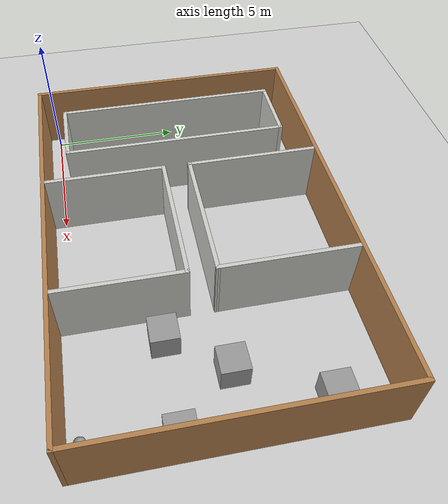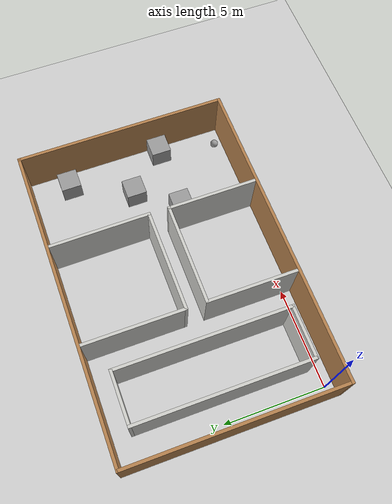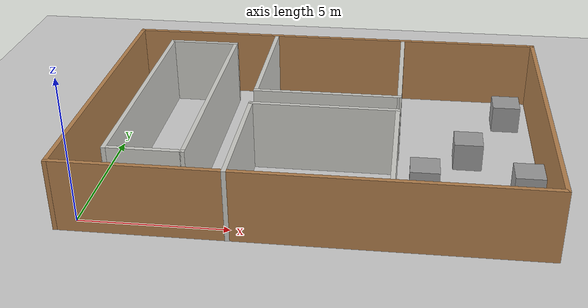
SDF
<sdf version="1.6">
 <world name="default">
  <light name="sun" type="directional">
   <pose>0 0 10 0 -0 0</pose>
   <diffuse>0.8 0.8 0.8 1</diffuse>
   <specular>0.2 0.2 0.2 1</specular>
   <attenuation>
    <range>1000</range>
    <constant>0.9</constant>
    <linear>0.01</linear>
    <quadratic>0.001</quadratic>
   </attenuation>
   <direction>-0.5 0.1 -0.9</direction>
  </light>
  <model name="ground_plane">
   <static>1</static>
   <link name="link">
    <collision name="collision">
     <geometry><plane><normal>0 0 1</normal><size>100 100</size></plane></geometry>
     <surface>
      <contact><collide_bitmask>65535</collide_bitmask></contact>
      <friction><ode><mu>100</mu><mu2>50</mu2></ode></friction>
     </surface>
    </collision>
    <visual name="visual">
     <cast_shadows>0</cast_shadows>
     <geometry><plane><normal>0 0 1</normal><size>100 100</size></plane></geometry>
     <material>
      <script><uri>file://media/materials/scripts/gazebo.material</uri><name>Gazebo/Grey</name></script>
     </material>
    </visual>
   </link>
  </model>
  <gravity>0 0 -9.8</gravity>
  <magnetic_field>6e-06 2.3e-05 -4.2e-05</magnetic_field>
  <atmosphere type="adiabatic"/>
  <physics name="default_physics" default="0" type="ode">
   <max_step_size>0.001</max_step_size>
   <real_time_factor>1</real_time_factor>
   <real_time_update_rate>1000</real_time_update_rate>
  </physics>
  <scene><ambient>0.4 0.4 0.4 1</ambient><background>0.7 0.7 0.7 1</background><shadows>1</shadows></scene>
  <audio><device>default</device></audio>
  <spherical_coordinates>
   <surface_model>EARTH_WGS84</surface_model>
   <latitude_deg>0</latitude_deg>
   <longitude_deg>0</longitude_deg>
   <elevation>0</elevation>
   <heading_deg>0</heading_deg>
  </spherical_coordinates>
  <model name="house_1007">
   <pose>7.25 4.75 0 0 -0 0</pose>
   <link name="Wall_10">
    <collision name="Wall_10_Collision">
     <geometry><box><size>8.65 0.15 2.5</size></box></geometry>
     <pose>0 0 1.25 0 -0 0</pose>
    </collision>
    <visual name="Wall_10_Visual">
     <pose>0 0 1.25 0 -0 0</pose>
     <geometry><box><size>8.65 0.15 2.5</size></box></geometry>
     <material>
      <script><uri>file://media/materials/scripts/gazebo.material</uri><name>Gazebo/CeilingTiled</name></script>
      <ambient>1 1 1 1</ambient>
     </material>
     <meta><layer>0</layer></meta>
    </visual>
    <pose>-6.25 -0 0 0 -0 -1.5708</pose>
   </link>
   <link name="Wall_11">
    <collision name="Wall_11_Collision">
     <geometry><box><size>2.65 0.15 2.5</size></box></geometry>
     <pose>0 0 1.25 0 -0 0</pose>
    </collision>
    <visual name="Wall_11_Visual">
     <pose>0 0 1.25 0 -0 0</pose>
     <geometry><box><size>2.65 0.15 2.5</size></box></geometry>
     <material>
      <script><uri>file://media/materials/scripts/gazebo.material</uri><name>Gazebo/CeilingTiled</name></script>
      <ambient>1 1 1 1</ambient>
     </material>
     <meta><layer>0</layer></meta>
    </visual>
    <pose>-5 -4.25 0 0 -0 0</pose>
   </link>
   <link name="Wall_12">
    <collision name="Wall_12_Collision">
     <geometry><box><size>8.65 0.15 2.5</size></box></geometry>
     <pose>0 0 1.25 0 -0 0</pose>
    </collision>
    <visual name="Wall_12_Visual">
     <pose>0 0 1.25 0 -0 0</pose>
     <geometry><box><size>8.65 0.15 2.5</size></box></geometry>
     <material>
      <script><uri>file://media/materials/scripts/gazebo.material</uri><name>Gazebo/CeilingTiled</name></script>
      <ambient>1 1 1 1</ambient>
     </material>
     <meta><layer>0</layer></meta>
    </visual>
    <pose>-3.75 -0 0 0 -0 1.5708</pose>
   </link>
   <link name="Wall_17">
    <collision name="Wall_17_Collision">
     <geometry><box><size>4.65 0.15 2.5</size></box></geometry>
     <pose>0 0 1.25 0 -0 0</pose>
    </collision>
    <visual name="Wall_17_Visual">
     <pose>0 0 1.25 0 -0 0</pose>
     <geometry><box><size>4.65 0.15 2.5</size></box></geometry>
     <material>
      <script><uri>file://media/materials/scripts/gazebo.material</uri><name>Gazebo/CeilingTiled</name></script>
      <ambient>1 1 1 1</ambient>
     </material>
     <meta><layer>0</layer></meta>
    </visual>
    <pose>-2.25 -3 0 0 -0 1.5708</pose>
   </link>
   <link name="Wall_18">
    <collision name="Wall_18_Collision">
     <geometry><box><size>5.15 0.15 2.5</size></box></geometry>
     <pose>0 0 1.25 0 -0 0</pose>
    </collision>
    <visual name="Wall_18_Visual">
     <pose>0 0 1.25 0 -0 0</pose>
     <geometry><box><size>5.15 0.15 2.5</size></box></geometry>
     <material>
      <script><uri>file://media/materials/scripts/gazebo.material</uri><name>Gazebo/CeilingTiled</name></script>
      <ambient>1 1 1 1</ambient>
     </material>
     <meta><layer>0</layer></meta>
    </visual>
    <pose>0.25 -0.75 0 0 -0 0</pose>
   </link>
   <link name="Wall_20">
    <collision name="Wall_20_Collision">
     <geometry><box><size>5.172 0.15 2.5</size></box></geometry>
     <pose>0 0 1.25 0 -0 0</pose>
    </collision>
    <visual name="Wall_20_Visual">
     <pose>0 0 1.25 0 -0 0</pose>
     <geometry><box><size>5.172 0.15 2.5</size></box></geometry>
     <material>
      <script><uri>file://media/materials/scripts/gazebo.material</uri><name>Gazebo/CeilingTiled</name></script>
      <ambient>1 1 1 1</ambient>
     </material>
     <meta><layer>0</layer></meta>
    </visual>
    <pose>0.261 0.25 0 0 -0 0</pose>
   </link>
   <link name="Wall_22">
    <collision name="Wall_22_Collision">
     <geometry><box><size>4.5 0.15 2.5</size></box></geometry>
     <pose>0 0 1.25 0 -0 0</pose>
    </collision>
    <visual name="Wall_22_Visual">
     <pose>0 0 1.25 0 -0 0</pose>
     <geometry><box><size>4.5 0.15 2.5</size></box></geometry>
     <material>
      <script><uri>file://media/materials/scripts/gazebo.material</uri><name>Gazebo/CeilingTiled</name></script>
      <ambient>1 1 1 1</ambient>
     </material>
     <meta><layer>0</layer></meta>
    </visual>
    <pose>2.75 -2.925 0 0 -0 -1.5708</pose>
   </link>
   <link name="Wall_26">
    <collision name="Wall_26_Collision">
     <geometry><box><size>5.00005 0.15 2.5</size></box></geometry>
     <pose>0 0 1.25 0 -0 0</pose>
    </collision>
    <visual name="Wall_26_Visual">
     <pose>0 0 1.25 0 -0 0</pose>
     <geometry><box><size>5.00005 0.15 2.5</size></box></geometry>
     <material>
      <script><uri>file://media/materials/scripts/gazebo.material</uri><name>Gazebo/CeilingTiled</name></script>
      <ambient>1 1 1 1</ambient>
     </material>
     <meta><layer>0</layer></meta>
    </visual>
    <pose>2.761 2.675 0 0 -0 1.57533</pose>
   </link>
   <link name="Wall_3">
    <collision name="Wall_3_Collision">
     <geometry><box><size>10.65 0.15 2.5</size></box></geometry>
     <pose>0 0 1.25 0 -0 0</pose>
    </collision>
    <visual name="Wall_3_Visual">
     <pose>0 0 1.25 0 -0 0</pose>
     <geometry><box><size>10.65 0.15 2.5</size></box></geometry>
     <material>
      <script><uri>file://media/materials/scripts/gazebo.material</uri><name>Gazebo/Wood</name></script>
      <ambient>1 1 1 1</ambient>
     </material>
     <meta><layer>0</layer></meta>
    </visual>
    <pose>-7.75 -0 0 0 -0 1.5708</pose>
   </link>
   <link name="Wall_32">
    <collision name="Wall_32_Collision">
     <geometry><box><size>2.65 0.15 2.5</size></box></geometry>
     <pose>0 0 1.25 0 -0 0</pose>
    </collision>
    <visual name="Wall_32_Visual">
     <pose>0 0 1.25 0 -0 0</pose>
     <geometry><box><size>2.65 0.15 2.5</size></box></geometry>
     <material>
      <script><uri>file://media/materials/scripts/gazebo.material</uri><name>Gazebo/CeilingTiled</name></script>
      <ambient>1 1 1 1</ambient>
     </material>
     <meta><layer>0</layer></meta>
    </visual>
    <pose>-5 4.25 0 0 -0 0</pose>
   </link>
   <link name="Wall_34">
    <collision name="Wall_34_Collision">
     <geometry><box><size>5.15 0.15 2.5</size></box></geometry>
     <pose>0 0 1.25 0 -0 0</pose>
    </collision>
    <visual name="Wall_34_Visual">
     <pose>0 0 1.25 0 -0 0</pose>
     <geometry><box><size>5.15 0.15 2.5</size></box></geometry>
     <material>
      <script><uri>file://media/materials/scripts/gazebo.material</uri><name>Gazebo/CeilingTiled</name></script>
      <ambient>1 1 1 1</ambient>
     </material>
     <meta><layer>0</layer></meta>
    </visual>
    <pose>-2.25 2.75 0 0 -0 1.5708</pose>
   </link>
   <link name="Wall_6">
    <collision name="Wall_6_Collision">
     <geometry><box><size>15.65 0.15 2.5</size></box></geometry>
     <pose>0 0 1.25 0 -0 0</pose>
    </collision>
    <visual name="Wall_6_Visual">
     <pose>0 0 1.25 0 -0 0</pose>
     <geometry><box><size>15.65 0.15 2.5</size></box></geometry>
     <material>
      <script><uri>file://media/materials/scripts/gazebo.material</uri><name>Gazebo/Wood</name></script>
      <ambient>1 1 1 1</ambient>
     </material>
     <meta><layer>0</layer></meta>
    </visual>
    <pose>-0 5.25 0 0 -0 0</pose>
   </link>
   <link name="Wall_7">
    <collision name="Wall_7_Collision">
     <geometry><box><size>10.65 0.15 2.5</size></box></geometry>
     <pose>0 0 1.25 0 -0 0</pose>
    </collision>
    <visual name="Wall_7_Visual">
     <pose>0 0 1.25 0 -0 0</pose>
     <geometry><box><size>10.65 0.15 2.5</size></box></geometry>
     <material>
      <script><uri>file://media/materials/scripts/gazebo.material</uri><name>Gazebo/Wood</name></script>
      <ambient>1 1 1 1</ambient>
     </material>
     <meta><layer>0</layer></meta>
    </visual>
    <pose>7.75 -0 0 0 -0 -1.5708</pose>
   </link>
   <link name="Wall_8">
    <collision name="Wall_8_Collision">
     <geometry><box><size>15.65 0.15 2.5</size></box></geometry>
     <pose>0 0 1.25 0 -0 0</pose>
    </collision>
    <visual name="Wall_8_Visual">
     <pose>0 0 1.25 0 -0 0</pose>
     <geometry><box><size>15.65 0.15 2.5</size></box></geometry>
     <material>
      <script><uri>file://media/materials/scripts/gazebo.material</uri><name>Gazebo/Wood</name></script>
      <ambient>1 1 1 1</ambient>
     </material>
     <meta><layer>0</layer></meta>
    </visual>
    <pose>-0 -5.25 0 0 -0 3.14159</pose>
   </link>
   <static>1</static>
  </model>
  <model name="unit_box">
   <pose>11 3 0.499995 1e-05 -0 0</pose>
   <link name="link">
    <inertial>
     <mass>1</mass>
     <inertia>
      <ixx>0.166667</ixx>
      <ixy>0</ixy>
      <ixz>0</ixz>
      <iyy>0.166667</iyy>
      <iyz>0</iyz>
      <izz>0.166667</izz>
     </inertia>
    </inertial>
    <collision name="collision"><geometry><box><size>1 1 1</size></box></geometry></collision>
    <visual name="visual">
     <geometry><box><size>1 1 1</size></box></geometry>
     <material>
      <script><name>Gazebo/Grey</name><uri>file://media/materials/scripts/gazebo.material</uri></script>
     </material>
    </visual>
   </link>
  </model>
  <model name="unit_box_0">
   <pose>14 8 0.499995 -1e-05 0 0</pose>
   <link name="link">
    <inertial>
     <mass>1</mass>
     <inertia>
      <ixx>0.166667</ixx>
      <ixy>0</ixy>
      <ixz>0</ixz>
      <iyy>0.166667</iyy>
      <iyz>0</iyz>
      <izz>0.166667</izz>
     </inertia>
    </inertial>
    <collision name="collision"><geometry><box><size>1 1 1</size></box></geometry></collision>
    <visual name="visual">
     <geometry><box><size>1 1 1</size></box></geometry>
     <material>
      <script><name>Gazebo/Grey</name><uri>file://media/materials/scripts/gazebo.material</uri></script>
     </material>
    </visual>
   </link>
  </model>
  <model name="unit_box_1">
   <pose>12.5 5 0.499995 0 -1e-05 0</pose>
   <link name="link">
    <inertial>
     <mass>1</mass>
     <inertia>
      <ixx>0.166667</ixx>
      <ixy>0</ixy>
      <ixz>0</ixz>
      <iyy>0.166667</iyy>
      <iyz>0</iyz>
      <izz>0.166667</izz>
     </inertia>
    </inertial>
    <collision name="collision"><geometry><box><size>1 1 1</size></box></geometry></collision>
    <visual name="visual">
     <geometry><box><size>1 1 1</size></box></geometry>
     <material>
      <script><name>Gazebo/Grey</name><uri>file://media/materials/scripts/gazebo.material</uri></script>
     </material>
    </visual>
   </link>
  </model>
  <model name="unit_box_2">
   <pose>14.425 3.00001 0.5 0 0 -2e-06</pose>
   <link name="link">
    <inertial>
     <mass>1</mass>
     <inertia>
      <ixx>0.166667</ixx>
      <ixy>0</ixy>
      <ixz>0</ixz>
      <iyy>0.166667</iyy>
      <iyz>0</iyz>
      <izz>0.166667</izz>
     </inertia>
    </inertial>
    <collision name="collision"><geometry><box><size>1 1 1</size></box></geometry></collision>
    <visual name="visual">
     <geometry><box><size>1 1 1</size></box></geometry>
     <material>
      <script><name>Gazebo/Grey</name><uri>file://media/materials/scripts/gazebo.material</uri></script>
     </material>
    </visual>
   </link>
  </model>
  <model name="unit_sphere">
   <link name="link">
    <inertial>
     <mass>1</mass>
     <inertia><ixx>0.1</ixx><ixy>0</ixy><ixz>0</ixz><iyy>0.1</iyy><iyz>0</iyz><izz>0.1</izz></inertia>
    </inertial>
    <visual name="visual">
     <geometry><sphere><radius>0.2</radius></sphere></geometry>
     <material>
      <script><name>Gazebo/Grey</name><uri>file://media/materials/scripts/gazebo.material</uri></script>
      <shader type="vertex"><normal_map>__default__</normal_map></shader>
      <ambient>0.3 0.3 0.3 1</ambient>
      <diffuse>0.7 0.7 0.7 1</diffuse>
      <specular>0.01 0.01 0.01 1</specular>
      <emissive>0 0 0 1</emissive>
     </material>
    </visual>
    <collision name="collision">
     <geometry><sphere><radius>0.2</radius></sphere></geometry>
     <surface>
      <friction>
       <ode><mu>1</mu><mu2>1</mu2><fdir1>0 0 0</fdir1><slip1>0</slip1><slip2>0</slip2></ode>
       <torsional>
        <coefficient>1</coefficient>
        <patch_radius>0</patch_radius>
        <surface_radius>0</surface_radius>
        <use_patch_radius>1</use_patch_radius>
        <ode><slip>0</slip></ode>
       </torsional>
      </friction>
      <bounce><restitution_coefficient>0</restitution_coefficient><threshold>1e+06</threshold></bounce>
      <contact>
       <collide_without_contact>0</collide_without_contact>
       <collide_without_contact_bitmask>1</collide_without_contact_bitmask>
       <collide_bitmask>1</collide_bitmask>
       <ode>
        <soft_cfm>0</soft_cfm>
        <soft_erp>0.2</soft_erp>
        <kp>1e+13</kp>
        <kd>1</kd>
        <max_vel>0.01</max_vel>
        <min_depth>0</min_depth>
       </ode>
       <bullet>
        <split_impulse>1</split_impulse>
        <split_impulse_penetration_threshold>-0.01</split_impulse_penetration_threshold>
        <soft_cfm>0</soft_cfm>
        <soft_erp>0.2</soft_erp>
        <kp>1e+13</kp>
        <kd>1</kd>
       </bullet>
      </contact>
     </surface>
    </collision>
   </link>
   <static>0</static>
   <pose>14 0 0.2 -0.012594 0 0</pose>
  </model>
 </world>
</sdf>
